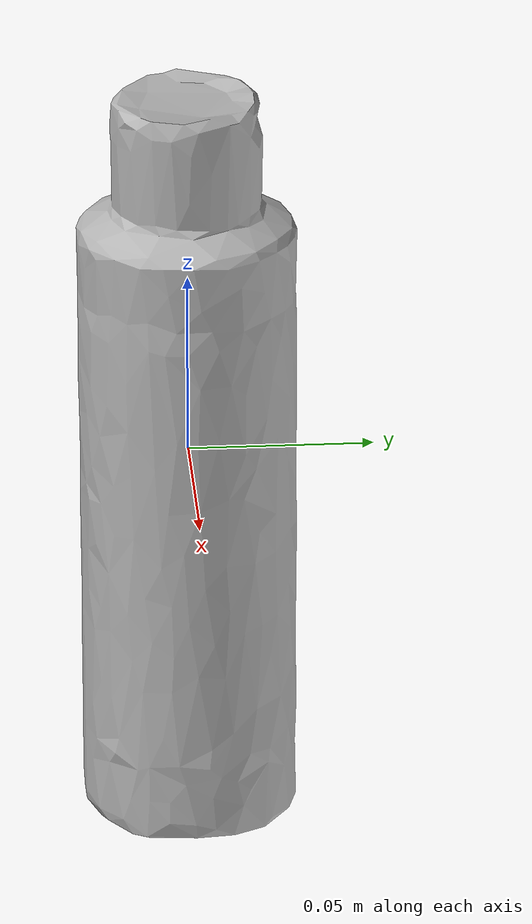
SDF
<?xml version="1.0" ?>
<sdf version="1.4">
  <model name="hela_curry_ketchup">
    <link name="hela_curry_ketchup_link">
      <inertial>
        <pose>0 0 0 0 0 0</pose>
        <mass>0.08</mass>
      </inertial>

      <visual name="hela_curry_ketchup_visual">
        <pose>0 0 0 0 0 0</pose>
        <material>
          <script>
            <uri>model://hela_curry_ketchup/materials/scripts</uri>
            <uri>model://hela_curry_ketchup/materials/textures</uri>
            <name>hela_curry_ketchup</name>
          </script>
        </material>
        <geometry>
          <mesh>
            <uri>model://hela_curry_ketchup/meshes/hela_curry_ketchup.dae</uri>
          </mesh>
        </geometry>
      </visual>

      <collision name="hela_curry_ketchup_collision">
        <pose>0 0 0 0 0 0</pose>
        <geometry>
          <mesh>
            <uri>model://hela_curry_ketchup/meshes/hela_curry_ketchup.dae</uri>
          </mesh>
        </geometry>
        <surface>
          <friction>
            <ode>
              <mu>0.8</mu>
              <mu2>0.8</mu2>
              <fdir1>0.0 0.0 0.0</fdir1>
              <slip1>0.01</slip1>
              <slip2>0.01</slip2>
            </ode>
          </friction>
        </surface>
      </collision>

    </link>
  </model>
</sdf>
